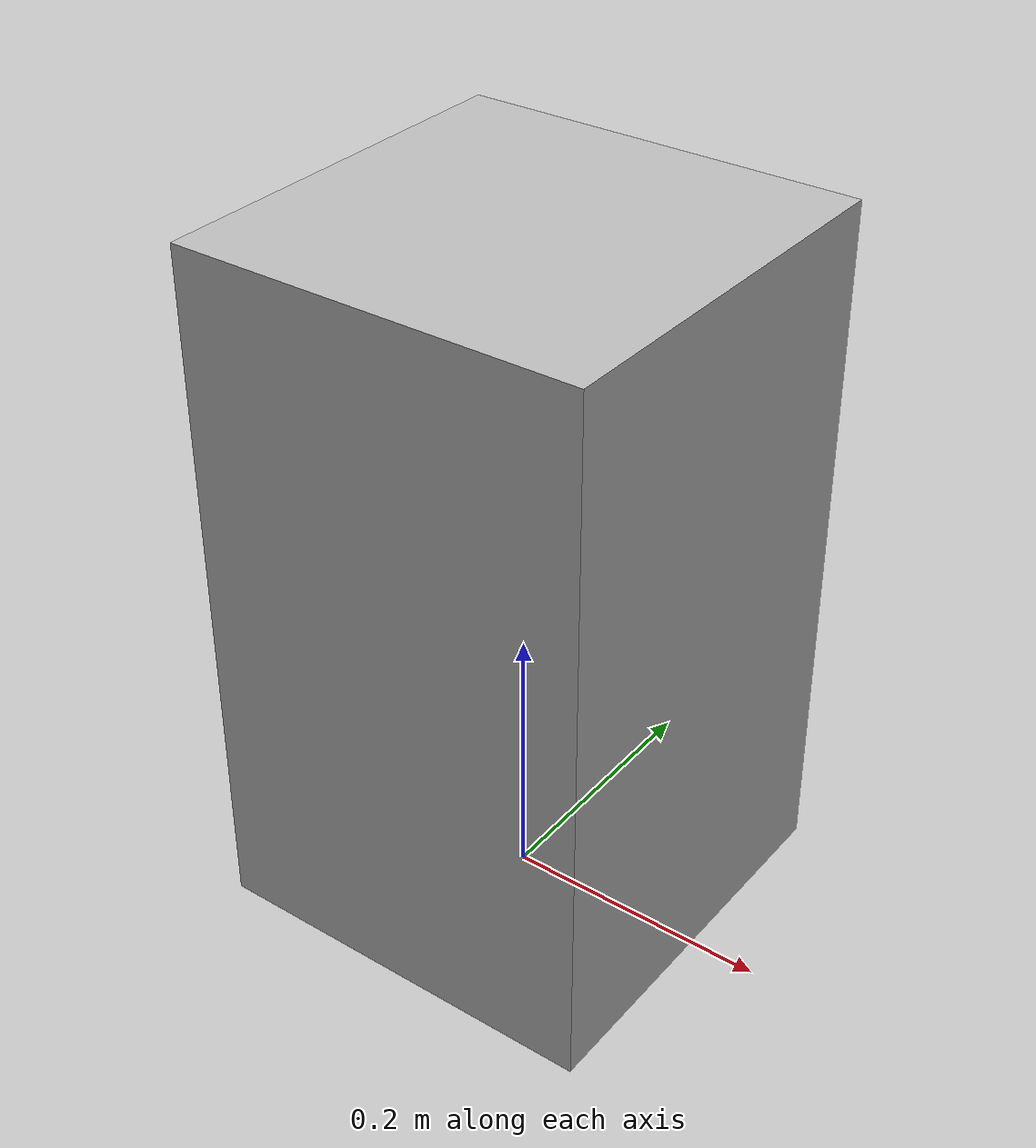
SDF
<?xml version="1.0"?>
<sdf version="1.6">
  <model name="rwc2018/dustbin2">
    <link name="1_link">
      <collision name="1_col">
        <geometry>
          <box>
            <size>0.3 0.3 0.52</size>
          </box>
        </geometry>
      </collision>
      <visual name="1_vis">
        <geometry>
          <box>
            <size>0.3 0.3 0.52</size>
          </box>
        </geometry>
      </visual>
      <pose>0 0 0.26 0 0 0</pose>
    </link>
    <link name="on_top_of">
      <virtual_volume name="on_top_of_vv">
        <geometry>
          <box>
            <size>0.28 0.24 0.25</size>
          </box>
        </geometry>
        <pose>0.0 0.0 0.665 0 0 0</pose>
      </virtual_volume>
    </link>
    <link name="in_front_of">
      <virtual_volume name="in_front_of_vv">
        <geometry>
          <box>
            <size>0.2 0.1 0.01</size>
          </box>
        </geometry>
        <pose>0.65 0.0 0.005 0 0 0</pose>
      </virtual_volume>
    </link>
    <static>true</static>
  </model>
</sdf>
